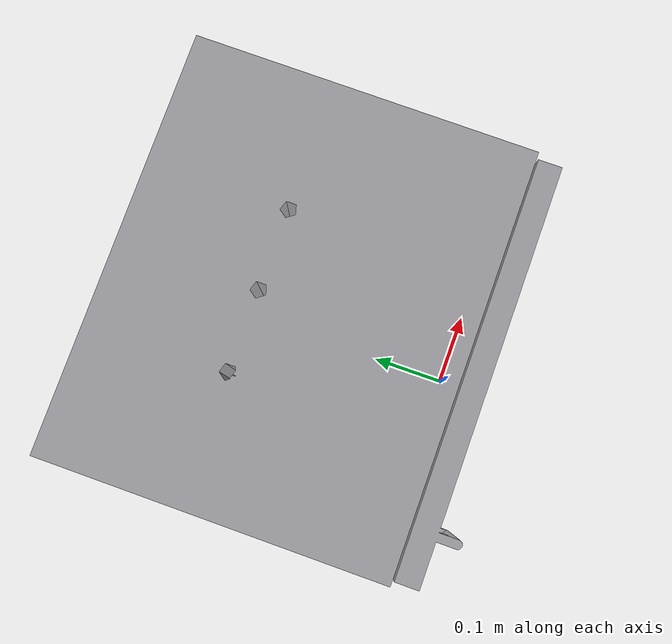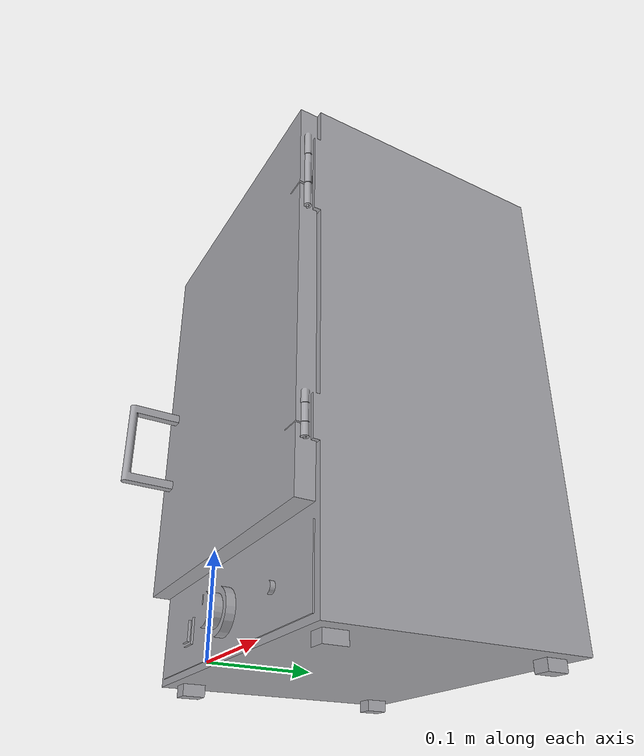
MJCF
<?xml version='1.0' encoding='utf-8'?>
<mujoco model="Modified promo oven - static inspection, not fabrication CAD">
  <compiler angle="radian" />
  <asset>
    <mesh name="oven" file="../../cad/stl/quincy-promo-tall-concept.stl" scale=".001 .001 .001" inertia="shell" />
  </asset>
  <worldbody>
    <light pos="0 -1 2" />
    <geom type="mesh" mesh="oven" rgba=".65 .65 .67 1" />
  </worldbody>
</mujoco>
